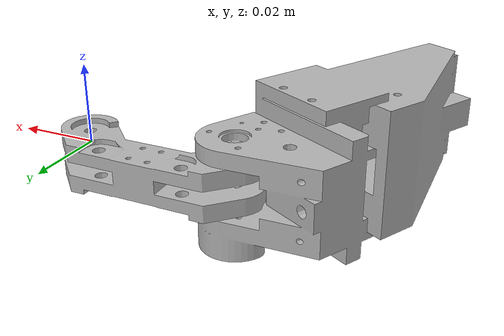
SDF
<sdf version="1.7">
  <model name="Simplified_Assem">
    <link name="base_link">
      <inertial>
        <pose>0.049896 -0.01589 -0.001168 0 -0 0</pose>
        <mass>0.534242</mass>
        <inertia>
          <ixx>0.00283153</ixx>
          <ixy>-0.000157053</ixy>
          <ixz>-9.67642e-05</ixz>
          <iyy>0.00175803</iyy>
          <iyz>-0.000764892</iyz>
          <izz>0.00290011</izz>
        </inertia>
      </inertial>
      <collision name="base_link_collision">
        <pose>0 0 0 0 -0 0</pose>
        <geometry>
          <mesh>
            <scale>1 1 1</scale>
            <uri>package://bionic_hand_description/meshes/visual/base_link.STL</uri>
          </mesh>
        </geometry>
      </collision>
      <visual name="base_link_visual">
        <pose>0 0 0 0 -0 0</pose>
        <geometry>
          <mesh>
            <scale>1 1 1</scale>
            <uri>package://bionic_hand_description/meshes/visual/base_link.STL</uri>
          </mesh>
        </geometry>
      </visual>
    </link>
    <joint name="joint1" type="revolute">
      <pose relative_to="base_link">-0.04 0 -0.01075 -3.14159 -0 -2.0633</pose>
      <parent>base_link</parent>
      <child>link1</child>
      <axis>
        <xyz>0 0 1</xyz>
        <limit>
          <lower>0</lower>
          <upper>0</upper>
          <effort>0</effort>
          <velocity>0</velocity>
        </limit>
        <dynamics>
          <spring_reference>0</spring_reference>
          <spring_stiffness>0</spring_stiffness>
        </dynamics>
      </axis>
    </joint>
    <link name="link1">
      <pose relative_to="joint1">0 0 0 0 -0 0</pose>
      <inertial>
        <pose>-0.028503 -0.086726 -0.009582 0 -0 0</pose>
        <mass>0.534242</mass>
        <inertia>
          <ixx>0.00186716</ixx>
          <ixy>0.000360426</ixy>
          <ixz>-0.000719741</ixz>
          <iyy>0.0027224</iyy>
          <iyz>0.000276398</iyz>
          <izz>0.00290011</izz>
        </inertia>
      </inertial>
      <collision name="link1_collision">
        <pose>0 0 0 0 -0 0</pose>
        <geometry>
          <mesh>
            <scale>1 1 1</scale>
            <uri>package://bionic_hand_description/meshes/visual/link1.STL</uri>
          </mesh>
        </geometry>
      </collision>
      <visual name="link1_visual">
        <pose>0 0 0 0 -0 0</pose>
        <geometry>
          <mesh>
            <scale>1 1 1</scale>
            <uri>package://bionic_hand_description/meshes/visual/link1.STL</uri>
          </mesh>
        </geometry>
      </visual>
    </link>
  </model>
</sdf>
